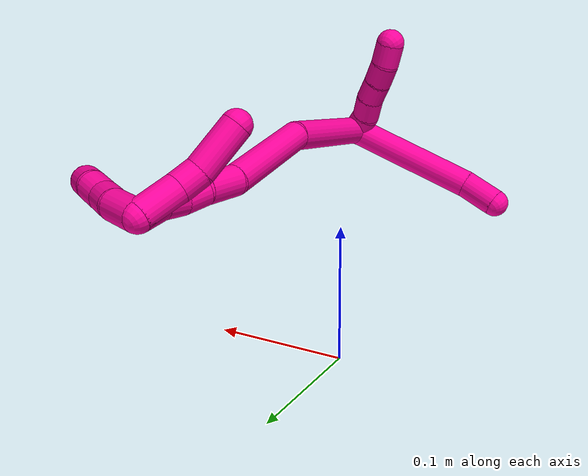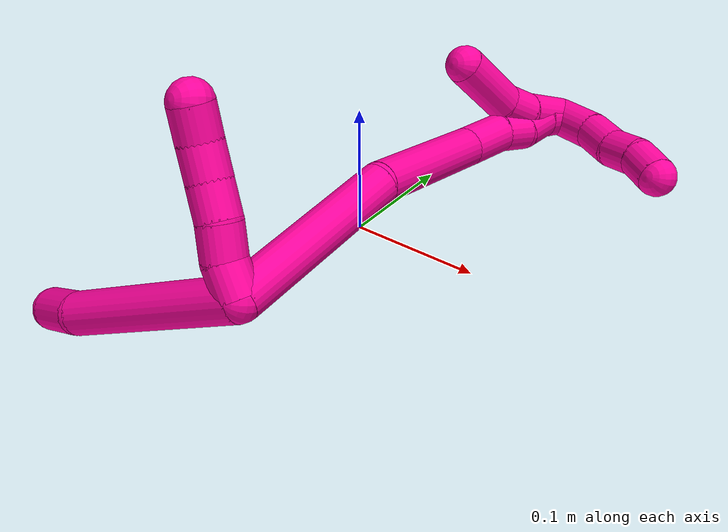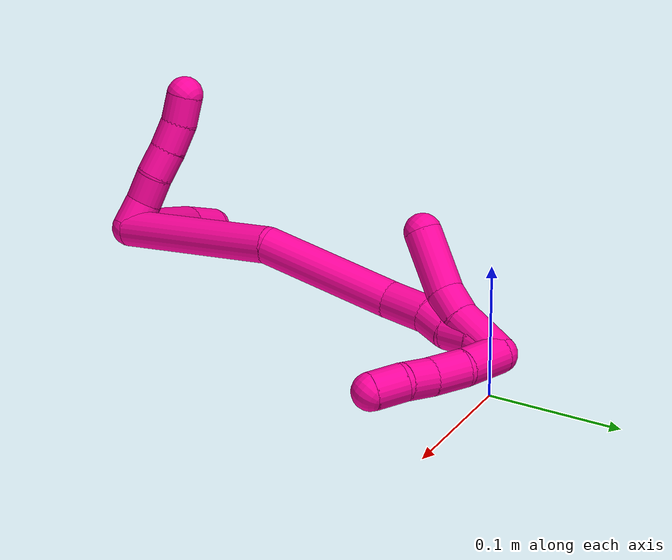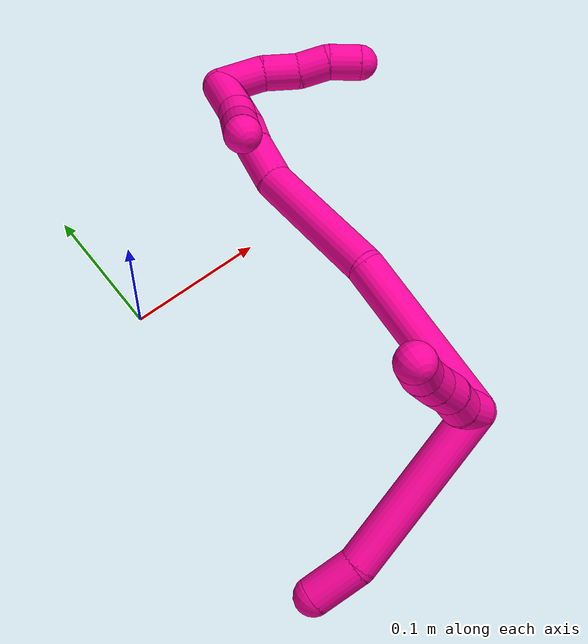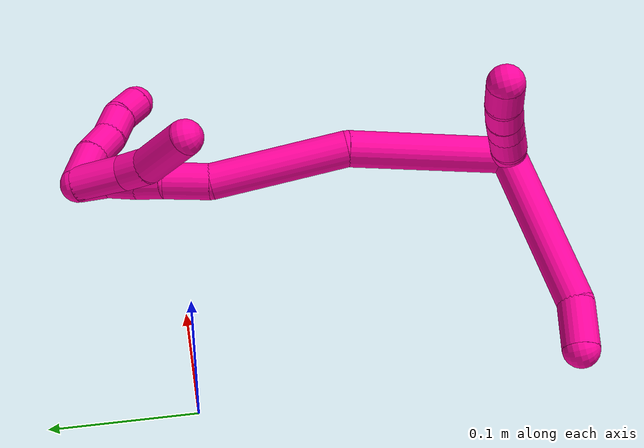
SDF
<sdf version="1.7">
 <world name="default">
  <model name="18">
   <static>0</static>
   <link name="18">
    <collision name="collision-cylinder-e_1_2_8">
     <pose>-0.057323 0.000674 0.01156 -0.058221 -1.37147 0.04764</pose>
     <geometry><cylinder><radius>0.0125</radius><length>0.116961</length></cylinder></geometry>
     <surface>
      <friction><ode><mu>1.16</mu><mu2>1.16</mu2><slip1>0</slip1><slip2>0</slip2></ode></friction>
      <contact><ode><kp>1e+06</kp><kd>1</kd><max_vel>0</max_vel><min_depth>0.001</min_depth></ode></contact>
     </surface>
    </collision>
    <visual name="visual-cylinder-e_1_2_8">
     <pose>-0.057323 0.000674 0.01156 -0.058221 -1.37147 0.04764</pose>
     <geometry><cylinder><radius>0.0125</radius><length>0.116961</length></cylinder></geometry>
     <material><ambient>1 0.007843 0.615686 1</ambient></material>
    </visual>
    <collision name="collision-cylinder-e_2_8_6">
     <pose>-0.130984 0.003371 0.021761 -2.16242 -1.42268 2.03411</pose>
     <geometry><cylinder><radius>0.0125</radius><length>0.033039</length></cylinder></geometry>
     <surface>
      <friction><ode><mu>1.16</mu><mu2>1.16</mu2><slip1>0</slip1><slip2>0</slip2></ode></friction>
      <contact><ode><kp>1e+06</kp><kd>1</kd><max_vel>0</max_vel><min_depth>0.001</min_depth></ode></contact>
     </surface>
    </collision>
    <visual name="visual-cylinder-e_2_8_6">
     <pose>-0.130984 0.003371 0.021761 -2.16242 -1.42268 2.03411</pose>
     <geometry><cylinder><radius>0.0125</radius><length>0.033039</length></cylinder></geometry>
     <material><ambient>1 0.007843 0.615686 1</ambient></material>
    </visual>
    <collision name="collision-cylinder-e_1_2_9">
     <pose>-0.001414 0.009679 0.002079 -1.3592 -0.141865 0.114694</pose>
     <geometry><cylinder><radius>0.0125</radius><length>0.02</length></cylinder></geometry>
     <surface>
      <friction><ode><mu>1.16</mu><mu2>1.16</mu2><slip1>0</slip1><slip2>0</slip2></ode></friction>
      <contact><ode><kp>1e+06</kp><kd>1</kd><max_vel>0</max_vel><min_depth>0.001</min_depth></ode></contact>
     </surface>
    </collision>
    <visual name="visual-cylinder-e_1_2_9">
     <pose>-0.001414 0.009679 0.002079 -1.3592 -0.141865 0.114694</pose>
     <geometry><cylinder><radius>0.0125</radius><length>0.02</length></cylinder></geometry>
     <material><ambient>1 0.007843 0.615686 1</ambient></material>
    </visual>
    <collision name="collision-cylinder-e_2_9_10">
     <pose>-0.001323 0.029129 0.00566 -1.4183 0.151029 -0.129656</pose>
     <geometry><cylinder><radius>0.0125</radius><length>0.02</length></cylinder></geometry>
     <surface>
      <friction><ode><mu>1.16</mu><mu2>1.16</mu2><slip1>0</slip1><slip2>0</slip2></ode></friction>
      <contact><ode><kp>1e+06</kp><kd>1</kd><max_vel>0</max_vel><min_depth>0.001</min_depth></ode></contact>
     </surface>
    </collision>
    <visual name="visual-cylinder-e_2_9_10">
     <pose>-0.001323 0.029129 0.00566 -1.4183 0.151029 -0.129656</pose>
     <geometry><cylinder><radius>0.0125</radius><length>0.02</length></cylinder></geometry>
     <material><ambient>1 0.007843 0.615686 1</ambient></material>
    </visual>
    <collision name="collision-cylinder-e_3_10_11">
     <pose>-3.8e-05 0.048781 0.008689 -1.41745 -0.021971 0.018836</pose>
     <geometry><cylinder><radius>0.0125</radius><length>0.02</length></cylinder></geometry>
     <surface>
      <friction><ode><mu>1.16</mu><mu2>1.16</mu2><slip1>0</slip1><slip2>0</slip2></ode></friction>
      <contact><ode><kp>1e+06</kp><kd>1</kd><max_vel>0</max_vel><min_depth>0.001</min_depth></ode></contact>
     </surface>
    </collision>
    <visual name="visual-cylinder-e_3_10_11">
     <pose>-3.8e-05 0.048781 0.008689 -1.41745 -0.021971 0.018836</pose>
     <geometry><cylinder><radius>0.0125</radius><length>0.02</length></cylinder></geometry>
     <material><ambient>1 0.007843 0.615686 1</ambient></material>
    </visual>
    <collision name="collision-cylinder-e_4_11_12">
     <pose>0.000182 0.06844 0.01226 -1.36472 0.044069 -0.035811</pose>
     <geometry><cylinder><radius>0.0125</radius><length>0.02</length></cylinder></geometry>
     <surface>
      <friction><ode><mu>1.16</mu><mu2>1.16</mu2><slip1>0</slip1><slip2>0</slip2></ode></friction>
      <contact><ode><kp>1e+06</kp><kd>1</kd><max_vel>0</max_vel><min_depth>0.001</min_depth></ode></contact>
     </surface>
    </collision>
    <visual name="visual-cylinder-e_4_11_12">
     <pose>0.000182 0.06844 0.01226 -1.36472 0.044069 -0.035811</pose>
     <geometry><cylinder><radius>0.0125</radius><length>0.02</length></cylinder></geometry>
     <material><ambient>1 0.007843 0.615686 1</ambient></material>
    </visual>
    <collision name="collision-cylinder-e_5_12_5">
     <pose>0.002744 0.087485 0.017408 -1.24757 0.213722 -0.154085</pose>
     <geometry><cylinder><radius>0.0125</radius><length>0.02</length></cylinder></geometry>
     <surface>
      <friction><ode><mu>1.16</mu><mu2>1.16</mu2><slip1>0</slip1><slip2>0</slip2></ode></friction>
      <contact><ode><kp>1e+06</kp><kd>1</kd><max_vel>0</max_vel><min_depth>0.001</min_depth></ode></contact>
     </surface>
    </collision>
    <visual name="visual-cylinder-e_5_12_5">
     <pose>0.002744 0.087485 0.017408 -1.24757 0.213722 -0.154085</pose>
     <geometry><cylinder><radius>0.0125</radius><length>0.02</length></cylinder></geometry>
     <material><ambient>1 0.007843 0.615686 1</ambient></material>
    </visual>
    <collision name="collision-cylinder-e_1_2_13">
     <pose>0.005985 0.027401 -0.048839 -2.63031 0.106477 -0.402269</pose>
     <geometry><cylinder><radius>0.0125</radius><length>0.112638</length></cylinder></geometry>
     <surface>
      <friction><ode><mu>1.16</mu><mu2>1.16</mu2><slip1>0</slip1><slip2>0</slip2></ode></friction>
      <contact><ode><kp>1e+06</kp><kd>1</kd><max_vel>0</max_vel><min_depth>0.001</min_depth></ode></contact>
     </surface>
    </collision>
    <visual name="visual-cylinder-e_1_2_13">
     <pose>0.005985 0.027401 -0.048839 -2.63031 0.106477 -0.402269</pose>
     <geometry><cylinder><radius>0.0125</radius><length>0.112638</length></cylinder></geometry>
     <material><ambient>1 0.007843 0.615686 1</ambient></material>
    </visual>
    <collision name="collision-cylinder-e_2_13_14">
     <pose>0.008505 0.066256 -0.143419 -2.89621 -0.073368 0.57855</pose>
     <geometry><cylinder><radius>0.0125</radius><length>0.094562</length></cylinder></geometry>
     <surface>
      <friction><ode><mu>1.16</mu><mu2>1.16</mu2><slip1>0</slip1><slip2>0</slip2></ode></friction>
      <contact><ode><kp>1e+06</kp><kd>1</kd><max_vel>0</max_vel><min_depth>0.001</min_depth></ode></contact>
     </surface>
    </collision>
    <visual name="visual-cylinder-e_2_13_14">
     <pose>0.008505 0.066256 -0.143419 -2.89621 -0.073368 0.57855</pose>
     <geometry><cylinder><radius>0.0125</radius><length>0.094562</length></cylinder></geometry>
     <material><ambient>1 0.007843 0.615686 1</ambient></material>
    </visual>
    <collision name="collision-cylinder-e_3_14_15">
     <pose>0.0079 0.082355 -0.204047 -2.83923 0.181416 -1.07652</pose>
     <geometry><cylinder><radius>0.0125</radius><length>0.03171</length></cylinder></geometry>
     <surface>
      <friction><ode><mu>1.16</mu><mu2>1.16</mu2><slip1>0</slip1><slip2>0</slip2></ode></friction>
      <contact><ode><kp>1e+06</kp><kd>1</kd><max_vel>0</max_vel><min_depth>0.001</min_depth></ode></contact>
     </surface>
    </collision>
    <visual name="visual-cylinder-e_3_14_15">
     <pose>0.0079 0.082355 -0.204047 -2.83923 0.181416 -1.07652</pose>
     <geometry><cylinder><radius>0.0125</radius><length>0.03171</length></cylinder></geometry>
     <material><ambient>1 0.007843 0.615686 1</ambient></material>
    </visual>
    <collision name="collision-cylinder-e_4_15_16">
     <pose>0.013129 0.087586 -0.228675 -3.08131 0.238116 -2.64777</pose>
     <geometry><cylinder><radius>0.0125</radius><length>0.020083</length></cylinder></geometry>
     <surface>
      <friction><ode><mu>1.16</mu><mu2>1.16</mu2><slip1>0</slip1><slip2>0</slip2></ode></friction>
      <contact><ode><kp>1e+06</kp><kd>1</kd><max_vel>0</max_vel><min_depth>0.001</min_depth></ode></contact>
     </surface>
    </collision>
    <visual name="visual-cylinder-e_4_15_16">
     <pose>0.013129 0.087586 -0.228675 -3.08131 0.238116 -2.64777</pose>
     <geometry><cylinder><radius>0.0125</radius><length>0.020083</length></cylinder></geometry>
     <material><ambient>1 0.007843 0.615686 1</ambient></material>
    </visual>
    <collision name="collision-cylinder-e_5_16_17">
     <pose>0.017322 0.091972 -0.247554 -2.74774 0.182362 -0.859457</pose>
     <geometry><cylinder><radius>0.0125</radius><length>0.020126</length></cylinder></geometry>
     <surface>
      <friction><ode><mu>1.16</mu><mu2>1.16</mu2><slip1>0</slip1><slip2>0</slip2></ode></friction>
      <contact><ode><kp>1e+06</kp><kd>1</kd><max_vel>0</max_vel><min_depth>0.001</min_depth></ode></contact>
     </surface>
    </collision>
    <visual name="visual-cylinder-e_5_16_17">
     <pose>0.017322 0.091972 -0.247554 -2.74774 0.182362 -0.859457</pose>
     <geometry><cylinder><radius>0.0125</radius><length>0.020126</length></cylinder></geometry>
     <material><ambient>1 0.007843 0.615686 1</ambient></material>
    </visual>
    <collision name="collision-cylinder-e_6_17_1">
     <pose>0.019927 0.096967 -0.267035 -3.02629 0.074782 -1.15017</pose>
     <geometry><cylinder><radius>0.0125</radius><length>0.020881</length></cylinder></geometry>
     <surface>
      <friction><ode><mu>1.16</mu><mu2>1.16</mu2><slip1>0</slip1><slip2>0</slip2></ode></friction>
      <contact><ode><kp>1e+06</kp><kd>1</kd><max_vel>0</max_vel><min_depth>0.001</min_depth></ode></contact>
     </surface>
    </collision>
    <visual name="visual-cylinder-e_6_17_1">
     <pose>0.019927 0.096967 -0.267035 -3.02629 0.074782 -1.15017</pose>
     <geometry><cylinder><radius>0.0125</radius><length>0.020881</length></cylinder></geometry>
     <material><ambient>1 0.007843 0.615686 1</ambient></material>
    </visual>
    <collision name="collision-cylinder-e_1_1_18">
     <pose>0.034037 0.090256 -0.275325 1.31695 1.02087 0.817588</pose>
     <geometry><cylinder><radius>0.0125</radius><length>0.03127</length></cylinder></geometry>
     <surface>
      <friction><ode><mu>1.16</mu><mu2>1.16</mu2><slip1>0</slip1><slip2>0</slip2></ode></friction>
      <contact><ode><kp>1e+06</kp><kd>1</kd><max_vel>0</max_vel><min_depth>0.001</min_depth></ode></contact>
     </surface>
    </collision>
    <visual name="visual-cylinder-e_1_1_18">
     <pose>0.034037 0.090256 -0.275325 1.31695 1.02087 0.817588</pose>
     <geometry><cylinder><radius>0.0125</radius><length>0.03127</length></cylinder></geometry>
     <material><ambient>1 0.007843 0.615686 1</ambient></material>
    </visual>
    <collision name="collision-cylinder-e_2_18_19">
     <pose>0.056428 0.074942 -0.269148 1.0625 0.818763 0.499278</pose>
     <geometry><cylinder><radius>0.0125</radius><length>0.024815</length></cylinder></geometry>
     <surface>
      <friction><ode><mu>1.16</mu><mu2>1.16</mu2><slip1>0</slip1><slip2>0</slip2></ode></friction>
      <contact><ode><kp>1e+06</kp><kd>1</kd><max_vel>0</max_vel><min_depth>0.001</min_depth></ode></contact>
     </surface>
    </collision>
    <visual name="visual-cylinder-e_2_18_19">
     <pose>0.056428 0.074942 -0.269148 1.0625 0.818763 0.499278</pose>
     <geometry><cylinder><radius>0.0125</radius><length>0.024815</length></cylinder></geometry>
     <material><ambient>1 0.007843 0.615686 1</ambient></material>
    </visual>
    <collision name="collision-cylinder-e_3_19_20">
     <pose>0.074918 0.063003 -0.262356 1.03914 1.06187 0.648044</pose>
     <geometry><cylinder><radius>0.0125</radius><length>0.021593</length></cylinder></geometry>
     <surface>
      <friction><ode><mu>1.16</mu><mu2>1.16</mu2><slip1>0</slip1><slip2>0</slip2></ode></friction>
      <contact><ode><kp>1e+06</kp><kd>1</kd><max_vel>0</max_vel><min_depth>0.001</min_depth></ode></contact>
     </surface>
    </collision>
    <visual name="visual-cylinder-e_3_19_20">
     <pose>0.074918 0.063003 -0.262356 1.03914 1.06187 0.648044</pose>
     <geometry><cylinder><radius>0.0125</radius><length>0.021593</length></cylinder></geometry>
     <material><ambient>1 0.007843 0.615686 1</ambient></material>
    </visual>
    <collision name="collision-cylinder-e_4_20_4">
     <pose>0.091881 0.051266 -0.255701 1.06513 0.74114 0.450199</pose>
     <geometry><cylinder><radius>0.0125</radius><length>0.022322</length></cylinder></geometry>
     <surface>
      <friction><ode><mu>1.16</mu><mu2>1.16</mu2><slip1>0</slip1><slip2>0</slip2></ode></friction>
      <contact><ode><kp>1e+06</kp><kd>1</kd><max_vel>0</max_vel><min_depth>0.001</min_depth></ode></contact>
     </surface>
    </collision>
    <visual name="visual-cylinder-e_4_20_4">
     <pose>0.091881 0.051266 -0.255701 1.06513 0.74114 0.450199</pose>
     <geometry><cylinder><radius>0.0125</radius><length>0.022322</length></cylinder></geometry>
     <material><ambient>1 0.007843 0.615686 1</ambient></material>
    </visual>
    <collision name="collision-cylinder-e_1_1_21">
     <pose>0.01947 0.099232 -0.259339 -0.059101 -0.068367 0.002022</pose>
     <geometry><cylinder><radius>0.0125</radius><length>0.036224</length></cylinder></geometry>
     <surface>
      <friction><ode><mu>1.16</mu><mu2>1.16</mu2><slip1>0</slip1><slip2>0</slip2></ode></friction>
      <contact><ode><kp>1e+06</kp><kd>1</kd><max_vel>0</max_vel><min_depth>0.001</min_depth></ode></contact>
     </surface>
    </collision>
    <visual name="visual-cylinder-e_1_1_21">
     <pose>0.01947 0.099232 -0.259339 -0.059101 -0.068367 0.002022</pose>
     <geometry><cylinder><radius>0.0125</radius><length>0.036224</length></cylinder></geometry>
     <material><ambient>1 0.007843 0.615686 1</ambient></material>
    </visual>
    <collision name="collision-cylinder-e_2_21_22">
     <pose>0.016772 0.103222 -0.231504 -0.289866 -0.141945 0.020752</pose>
     <geometry><cylinder><radius>0.0125</radius><length>0.020654</length></cylinder></geometry>
     <surface>
      <friction><ode><mu>1.16</mu><mu2>1.16</mu2><slip1>0</slip1><slip2>0</slip2></ode></friction>
      <contact><ode><kp>1e+06</kp><kd>1</kd><max_vel>0</max_vel><min_depth>0.001</min_depth></ode></contact>
     </surface>
    </collision>
    <visual name="visual-cylinder-e_2_21_22">
     <pose>0.016772 0.103222 -0.231504 -0.289866 -0.141945 0.020752</pose>
     <geometry><cylinder><radius>0.0125</radius><length>0.020654</length></cylinder></geometry>
     <material><ambient>1 0.007843 0.615686 1</ambient></material>
    </visual>
    <collision name="collision-cylinder-e_3_22_3">
     <pose>0.015543 0.117085 -0.20313 -0.532245 0.010766 -0.002935</pose>
     <geometry><cylinder><radius>0.0125</radius><length>0.043122</length></cylinder></geometry>
     <surface>
      <friction><ode><mu>1.16</mu><mu2>1.16</mu2><slip1>0</slip1><slip2>0</slip2></ode></friction>
      <contact><ode><kp>1e+06</kp><kd>1</kd><max_vel>0</max_vel><min_depth>0.001</min_depth></ode></contact>
     </surface>
    </collision>
    <visual name="visual-cylinder-e_3_22_3">
     <pose>0.015543 0.117085 -0.20313 -0.532245 0.010766 -0.002935</pose>
     <geometry><cylinder><radius>0.0125</radius><length>0.043122</length></cylinder></geometry>
     <material><ambient>1 0.007843 0.615686 1</ambient></material>
    </visual>
    <collision name="collision-sphere-3">
     <pose>0.015775 0.128025 -0.184552 0 -0 0</pose>
     <geometry><sphere><radius>0.0125</radius></sphere></geometry>
     <surface>
      <friction><ode><mu>1.16</mu><mu2>1.16</mu2><slip1>0</slip1><slip2>0</slip2></ode></friction>
      <contact><ode><kp>1e+06</kp><kd>1</kd><max_vel>0</max_vel><min_depth>0.001</min_depth></ode></contact>
     </surface>
    </collision>
    <visual name="visual-sphere-3">
     <pose>0.015775 0.128025 -0.184552 0 -0 0</pose>
     <geometry><sphere><radius>0.0125</radius></sphere></geometry>
     <material><ambient>1 0.007843 0.615686 1</ambient></material>
    </visual>
    <collision name="collision-sphere-22">
     <pose>0.015311 0.106144 -0.221707 0 -0 0</pose>
     <geometry><sphere><radius>0.0125</radius></sphere></geometry>
     <surface>
      <friction><ode><mu>1.16</mu><mu2>1.16</mu2><slip1>0</slip1><slip2>0</slip2></ode></friction>
      <contact><ode><kp>1e+06</kp><kd>1</kd><max_vel>0</max_vel><min_depth>0.001</min_depth></ode></contact>
     </surface>
    </collision>
    <visual name="visual-sphere-22">
     <pose>0.015311 0.106144 -0.221707 0 -0 0</pose>
     <geometry><sphere><radius>0.0125</radius></sphere></geometry>
     <material><ambient>1 0.007843 0.615686 1</ambient></material>
    </visual>
    <collision name="collision-sphere-21">
     <pose>0.018233 0.1003 -0.2413 0 -0 0</pose>
     <geometry><sphere><radius>0.0125</radius></sphere></geometry>
     <surface>
      <friction><ode><mu>1.16</mu><mu2>1.16</mu2><slip1>0</slip1><slip2>0</slip2></ode></friction>
      <contact><ode><kp>1e+06</kp><kd>1</kd><max_vel>0</max_vel><min_depth>0.001</min_depth></ode></contact>
     </surface>
    </collision>
    <visual name="visual-sphere-21">
     <pose>0.018233 0.1003 -0.2413 0 -0 0</pose>
     <geometry><sphere><radius>0.0125</radius></sphere></geometry>
     <material><ambient>1 0.007843 0.615686 1</ambient></material>
    </visual>
    <collision name="collision-sphere-4">
     <pose>0.099416 0.044063 -0.251713 0 -0 0</pose>
     <geometry><sphere><radius>0.0125</radius></sphere></geometry>
     <surface>
      <friction><ode><mu>1.16</mu><mu2>1.16</mu2><slip1>0</slip1><slip2>0</slip2></ode></friction>
      <contact><ode><kp>1e+06</kp><kd>1</kd><max_vel>0</max_vel><min_depth>0.001</min_depth></ode></contact>
     </surface>
    </collision>
    <visual name="visual-sphere-4">
     <pose>0.099416 0.044063 -0.251713 0 -0 0</pose>
     <geometry><sphere><radius>0.0125</radius></sphere></geometry>
     <material><ambient>1 0.007843 0.615686 1</ambient></material>
    </visual>
    <collision name="collision-sphere-20">
     <pose>0.084346 0.058469 -0.259689 0 -0 0</pose>
     <geometry><sphere><radius>0.0125</radius></sphere></geometry>
     <surface>
      <friction><ode><mu>1.16</mu><mu2>1.16</mu2><slip1>0</slip1><slip2>0</slip2></ode></friction>
      <contact><ode><kp>1e+06</kp><kd>1</kd><max_vel>0</max_vel><min_depth>0.001</min_depth></ode></contact>
     </surface>
    </collision>
    <visual name="visual-sphere-20">
     <pose>0.084346 0.058469 -0.259689 0 -0 0</pose>
     <geometry><sphere><radius>0.0125</radius></sphere></geometry>
     <material><ambient>1 0.007843 0.615686 1</ambient></material>
    </visual>
    <collision name="collision-sphere-11">
     <pose>-0.000258 0.058661 0.010216 0 -0 0</pose>
     <geometry><sphere><radius>0.0125</radius></sphere></geometry>
     <surface>
      <friction><ode><mu>1.16</mu><mu2>1.16</mu2><slip1>0</slip1><slip2>0</slip2></ode></friction>
      <contact><ode><kp>1e+06</kp><kd>1</kd><max_vel>0</max_vel><min_depth>0.001</min_depth></ode></contact>
     </surface>
    </collision>
    <visual name="visual-sphere-11">
     <pose>-0.000258 0.058661 0.010216 0 -0 0</pose>
     <geometry><sphere><radius>0.0125</radius></sphere></geometry>
     <material><ambient>1 0.007843 0.615686 1</ambient></material>
    </visual>
    <collision name="collision-sphere-10">
     <pose>0.000181 0.0389 0.007162 0 -0 0</pose>
     <geometry><sphere><radius>0.0125</radius></sphere></geometry>
     <surface>
      <friction><ode><mu>1.16</mu><mu2>1.16</mu2><slip1>0</slip1><slip2>0</slip2></ode></friction>
      <contact><ode><kp>1e+06</kp><kd>1</kd><max_vel>0</max_vel><min_depth>0.001</min_depth></ode></contact>
     </surface>
    </collision>
    <visual name="visual-sphere-10">
     <pose>0.000181 0.0389 0.007162 0 -0 0</pose>
     <geometry><sphere><radius>0.0125</radius></sphere></geometry>
     <material><ambient>1 0.007843 0.615686 1</ambient></material>
    </visual>
    <collision name="collision-sphere-6">
     <pose>-0.147322 0.005395 0.020402 0 -0 0</pose>
     <geometry><sphere><radius>0.0125</radius></sphere></geometry>
     <surface>
      <friction><ode><mu>1.16</mu><mu2>1.16</mu2><slip1>0</slip1><slip2>0</slip2></ode></friction>
      <contact><ode><kp>1e+06</kp><kd>1</kd><max_vel>0</max_vel><min_depth>0.001</min_depth></ode></contact>
     </surface>
    </collision>
    <visual name="visual-sphere-6">
     <pose>-0.147322 0.005395 0.020402 0 -0 0</pose>
     <geometry><sphere><radius>0.0125</radius></sphere></geometry>
     <material><ambient>1 0.007843 0.615686 1</ambient></material>
    </visual>
    <collision name="collision-sphere-9">
     <pose>-0.002828 0.019357 0.004158 0 -0 0</pose>
     <geometry><sphere><radius>0.0125</radius></sphere></geometry>
     <surface>
      <friction><ode><mu>1.16</mu><mu2>1.16</mu2><slip1>0</slip1><slip2>0</slip2></ode></friction>
      <contact><ode><kp>1e+06</kp><kd>1</kd><max_vel>0</max_vel><min_depth>0.001</min_depth></ode></contact>
     </surface>
    </collision>
    <visual name="visual-sphere-9">
     <pose>-0.002828 0.019357 0.004158 0 -0 0</pose>
     <geometry><sphere><radius>0.0125</radius></sphere></geometry>
     <material><ambient>1 0.007843 0.615686 1</ambient></material>
    </visual>
    <collision name="collision-sphere-2">
     <geometry><sphere><radius>0.0125</radius></sphere></geometry>
     <surface>
      <friction><ode><mu>1.16</mu><mu2>1.16</mu2><slip1>0</slip1><slip2>0</slip2></ode></friction>
      <contact><ode><kp>1e+06</kp><kd>1</kd><max_vel>0</max_vel><min_depth>0.001</min_depth></ode></contact>
     </surface>
    </collision>
    <visual name="visual-sphere-2">
     <geometry><sphere><radius>0.0125</radius></sphere></geometry>
     <material><ambient>1 0.007843 0.615686 1</ambient></material>
    </visual>
    <collision name="collision-sphere-19">
     <pose>0.06549 0.067538 -0.265023 0 -0 0</pose>
     <geometry><sphere><radius>0.0125</radius></sphere></geometry>
     <surface>
      <friction><ode><mu>1.16</mu><mu2>1.16</mu2><slip1>0</slip1><slip2>0</slip2></ode></friction>
      <contact><ode><kp>1e+06</kp><kd>1</kd><max_vel>0</max_vel><min_depth>0.001</min_depth></ode></contact>
     </surface>
    </collision>
    <visual name="visual-sphere-19">
     <pose>0.06549 0.067538 -0.265023 0 -0 0</pose>
     <geometry><sphere><radius>0.0125</radius></sphere></geometry>
     <material><ambient>1 0.007843 0.615686 1</ambient></material>
    </visual>
    <collision name="collision-sphere-8">
     <pose>-0.114645 0.001348 0.023121 0 -0 0</pose>
     <geometry><sphere><radius>0.0125</radius></sphere></geometry>
     <surface>
      <friction><ode><mu>1.16</mu><mu2>1.16</mu2><slip1>0</slip1><slip2>0</slip2></ode></friction>
      <contact><ode><kp>1e+06</kp><kd>1</kd><max_vel>0</max_vel><min_depth>0.001</min_depth></ode></contact>
     </surface>
    </collision>
    <visual name="visual-sphere-8">
     <pose>-0.114645 0.001348 0.023121 0 -0 0</pose>
     <geometry><sphere><radius>0.0125</radius></sphere></geometry>
     <material><ambient>1 0.007843 0.615686 1</ambient></material>
    </visual>
    <collision name="collision-sphere-12">
     <pose>0.000623 0.078219 0.014304 0 -0 0</pose>
     <geometry><sphere><radius>0.0125</radius></sphere></geometry>
     <surface>
      <friction><ode><mu>1.16</mu><mu2>1.16</mu2><slip1>0</slip1><slip2>0</slip2></ode></friction>
      <contact><ode><kp>1e+06</kp><kd>1</kd><max_vel>0</max_vel><min_depth>0.001</min_depth></ode></contact>
     </surface>
    </collision>
    <visual name="visual-sphere-12">
     <pose>0.000623 0.078219 0.014304 0 -0 0</pose>
     <geometry><sphere><radius>0.0125</radius></sphere></geometry>
     <material><ambient>1 0.007843 0.615686 1</ambient></material>
    </visual>
    <collision name="collision-sphere-5">
     <pose>0.004865 0.096752 0.020512 0 -0 0</pose>
     <geometry><sphere><radius>0.0125</radius></sphere></geometry>
     <surface>
      <friction><ode><mu>1.16</mu><mu2>1.16</mu2><slip1>0</slip1><slip2>0</slip2></ode></friction>
      <contact><ode><kp>1e+06</kp><kd>1</kd><max_vel>0</max_vel><min_depth>0.001</min_depth></ode></contact>
     </surface>
    </collision>
    <visual name="visual-sphere-5">
     <pose>0.004865 0.096752 0.020512 0 -0 0</pose>
     <geometry><sphere><radius>0.0125</radius></sphere></geometry>
     <material><ambient>1 0.007843 0.615686 1</ambient></material>
    </visual>
    <collision name="collision-sphere-13">
     <pose>0.011971 0.054801 -0.097678 0 -0 0</pose>
     <geometry><sphere><radius>0.0125</radius></sphere></geometry>
     <surface>
      <friction><ode><mu>1.16</mu><mu2>1.16</mu2><slip1>0</slip1><slip2>0</slip2></ode></friction>
      <contact><ode><kp>1e+06</kp><kd>1</kd><max_vel>0</max_vel><min_depth>0.001</min_depth></ode></contact>
     </surface>
    </collision>
    <visual name="visual-sphere-13">
     <pose>0.011971 0.054801 -0.097678 0 -0 0</pose>
     <geometry><sphere><radius>0.0125</radius></sphere></geometry>
     <material><ambient>1 0.007843 0.615686 1</ambient></material>
    </visual>
    <collision name="collision-sphere-14">
     <pose>0.005039 0.077711 -0.18916 0 -0 0</pose>
     <geometry><sphere><radius>0.0125</radius></sphere></geometry>
     <surface>
      <friction><ode><mu>1.16</mu><mu2>1.16</mu2><slip1>0</slip1><slip2>0</slip2></ode></friction>
      <contact><ode><kp>1e+06</kp><kd>1</kd><max_vel>0</max_vel><min_depth>0.001</min_depth></ode></contact>
     </surface>
    </collision>
    <visual name="visual-sphere-14">
     <pose>0.005039 0.077711 -0.18916 0 -0 0</pose>
     <geometry><sphere><radius>0.0125</radius></sphere></geometry>
     <material><ambient>1 0.007843 0.615686 1</ambient></material>
    </visual>
    <collision name="collision-sphere-15">
     <pose>0.01076 0.086999 -0.218935 0 -0 0</pose>
     <geometry><sphere><radius>0.0125</radius></sphere></geometry>
     <surface>
      <friction><ode><mu>1.16</mu><mu2>1.16</mu2><slip1>0</slip1><slip2>0</slip2></ode></friction>
      <contact><ode><kp>1e+06</kp><kd>1</kd><max_vel>0</max_vel><min_depth>0.001</min_depth></ode></contact>
     </surface>
    </collision>
    <visual name="visual-sphere-15">
     <pose>0.01076 0.086999 -0.218935 0 -0 0</pose>
     <geometry><sphere><radius>0.0125</radius></sphere></geometry>
     <material><ambient>1 0.007843 0.615686 1</ambient></material>
    </visual>
    <collision name="collision-sphere-16">
     <pose>0.015497 0.088174 -0.238416 0 -0 0</pose>
     <geometry><sphere><radius>0.0125</radius></sphere></geometry>
     <surface>
      <friction><ode><mu>1.16</mu><mu2>1.16</mu2><slip1>0</slip1><slip2>0</slip2></ode></friction>
      <contact><ode><kp>1e+06</kp><kd>1</kd><max_vel>0</max_vel><min_depth>0.001</min_depth></ode></contact>
     </surface>
    </collision>
    <visual name="visual-sphere-16">
     <pose>0.015497 0.088174 -0.238416 0 -0 0</pose>
     <geometry><sphere><radius>0.0125</radius></sphere></geometry>
     <material><ambient>1 0.007843 0.615686 1</ambient></material>
    </visual>
    <collision name="collision-sphere-17">
     <pose>0.019147 0.09577 -0.256693 0 -0 0</pose>
     <geometry><sphere><radius>0.0125</radius></sphere></geometry>
     <surface>
      <friction><ode><mu>1.16</mu><mu2>1.16</mu2><slip1>0</slip1><slip2>0</slip2></ode></friction>
      <contact><ode><kp>1e+06</kp><kd>1</kd><max_vel>0</max_vel><min_depth>0.001</min_depth></ode></contact>
     </surface>
    </collision>
    <visual name="visual-sphere-17">
     <pose>0.019147 0.09577 -0.256693 0 -0 0</pose>
     <geometry><sphere><radius>0.0125</radius></sphere></geometry>
     <material><ambient>1 0.007843 0.615686 1</ambient></material>
    </visual>
    <collision name="collision-sphere-1">
     <pose>0.020707 0.098165 -0.277377 0 -0 0</pose>
     <geometry><sphere><radius>0.0125</radius></sphere></geometry>
     <surface>
      <friction><ode><mu>1.16</mu><mu2>1.16</mu2><slip1>0</slip1><slip2>0</slip2></ode></friction>
      <contact><ode><kp>1e+06</kp><kd>1</kd><max_vel>0</max_vel><min_depth>0.001</min_depth></ode></contact>
     </surface>
    </collision>
    <visual name="visual-sphere-1">
     <pose>0.020707 0.098165 -0.277377 0 -0 0</pose>
     <geometry><sphere><radius>0.0125</radius></sphere></geometry>
     <material><ambient>1 0.007843 0.615686 1</ambient></material>
    </visual>
    <collision name="collision-sphere-18">
     <pose>0.047367 0.082346 -0.273273 0 -0 0</pose>
     <geometry><sphere><radius>0.0125</radius></sphere></geometry>
     <surface>
      <friction><ode><mu>1.16</mu><mu2>1.16</mu2><slip1>0</slip1><slip2>0</slip2></ode></friction>
      <contact><ode><kp>1e+06</kp><kd>1</kd><max_vel>0</max_vel><min_depth>0.001</min_depth></ode></contact>
     </surface>
    </collision>
    <visual name="visual-sphere-18">
     <pose>0.047367 0.082346 -0.273273 0 -0 0</pose>
     <geometry><sphere><radius>0.0125</radius></sphere></geometry>
     <material><ambient>1 0.007843 0.615686 1</ambient></material>
    </visual>
    <inertial>
     <pose>-0.000555 0.054161 -0.116383 0 -0 0</pose>
     <mass>0.75</mass>
     <inertia><ixx>0.000218</ixx><ixy>0</ixy><ixz>0</ixz><iyy>1.2e-05</iyy><iyz>0</iyz><izz>2.5e-05</izz></inertia>
    </inertial>
   </link>
   <pose>0.097632 -0.22774 0.11818 1.14911 -0.500514 0.011522</pose>
  </model>
 </world>
</sdf>
